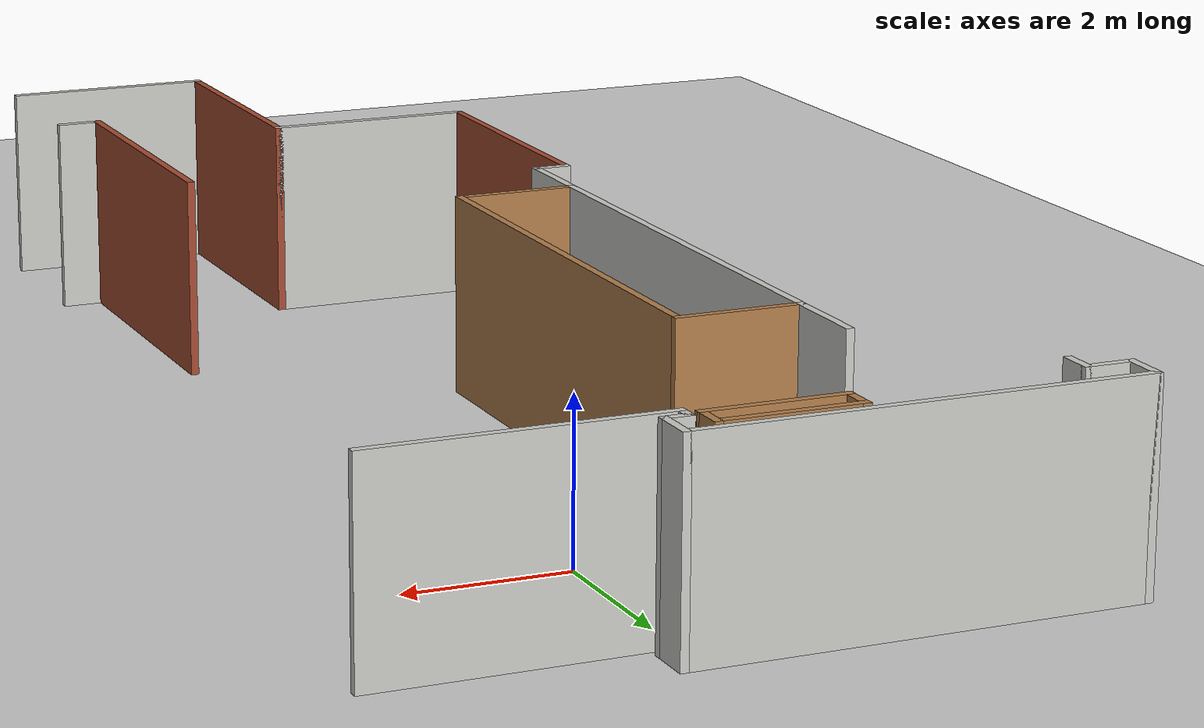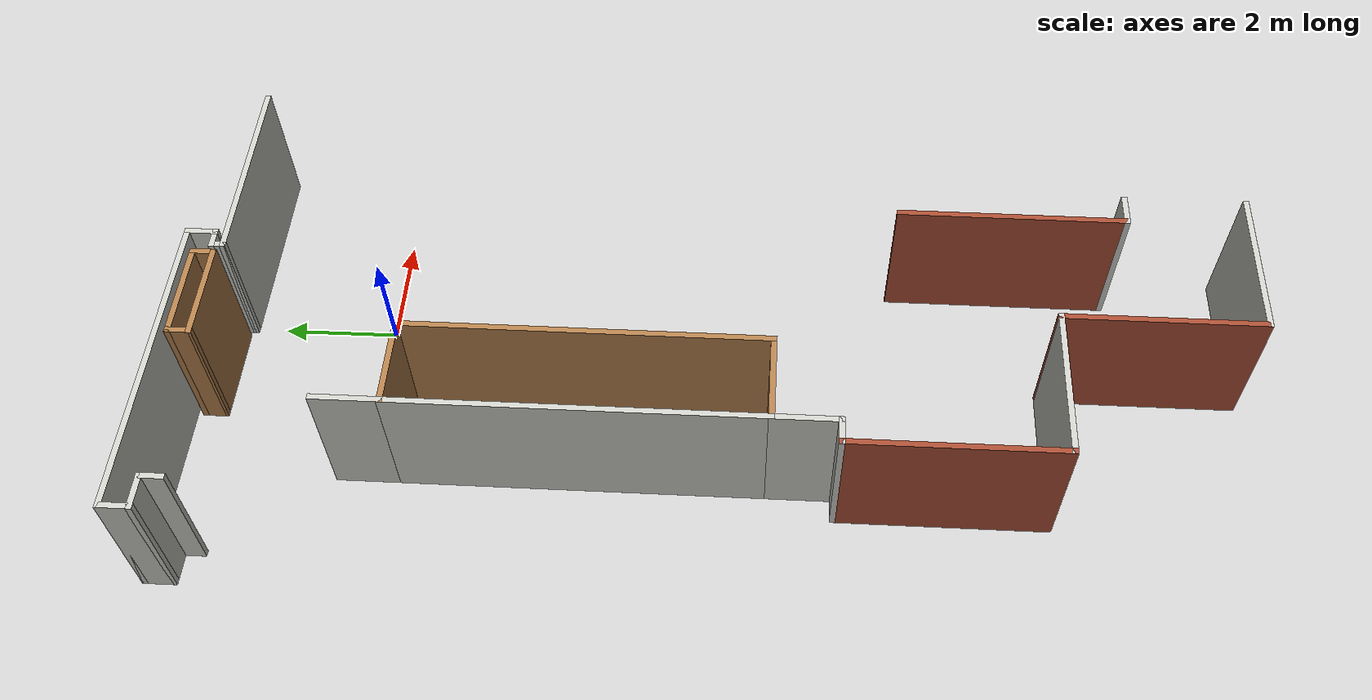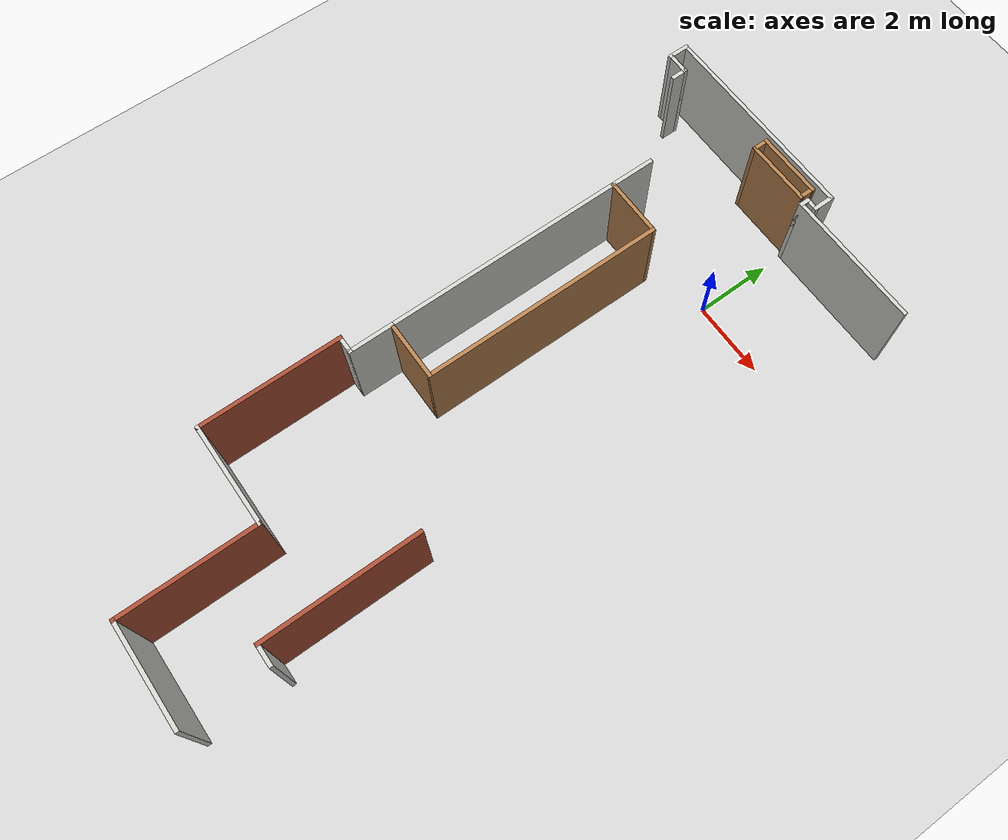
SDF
<sdf version="1.7">
 <world name="default">
  <model name="ground_plane">
   <static>1</static>
   <link name="link">
    <collision name="collision">
     <geometry><plane><normal>0 0 1</normal><size>100 100</size></plane></geometry>
     <surface><friction><ode><mu>100</mu><mu2>50</mu2></ode></friction></surface>
    </collision>
    <visual name="visual">
     <cast_shadows>0</cast_shadows>
     <geometry><plane><normal>0 0 1</normal><size>100 100</size></plane></geometry>
     <material>
      <script><uri>file://media/materials/scripts/gazebo.material</uri><name>Gazebo/Grey</name></script>
     </material>
    </visual>
   </link>
  </model>
  <model name="miraikan_5F_gate_and_elevator">
   <link name="Wall_167">
    <pose>-1.45 5.155 0 0 -0 1.5708</pose>
    <visual name="Wall_167_Visual">
     <pose>0 0 1.25 0 -0 0</pose>
     <geometry><box><size>0.45 0.1 2.5</size></box></geometry>
     <material>
      <script><uri>file://media/materials/scripts/gazebo.material</uri><name>Gazebo/CeilingTiled</name></script>
      <ambient>1 1 1 1</ambient>
      <shader type="pixel"/>
     </material>
     <meta><layer>0</layer></meta>
    </visual>
    <collision name="Wall_167_Collision">
     <pose>0 0 1.25 0 -0 0</pose>
     <geometry><box><size>0.45 0.1 2.5</size></box></geometry>
     <surface>
      <friction>
       <ode><mu>1</mu><mu2>1</mu2><fdir1>0 0 0</fdir1><slip1>0</slip1><slip2>0</slip2></ode>
       <torsional>
        <coefficient>1</coefficient>
        <patch_radius>0</patch_radius>
        <surface_radius>0</surface_radius>
        <use_patch_radius>1</use_patch_radius>
        <ode><slip>0</slip></ode>
       </torsional>
      </friction>
      <bounce><restitution_coefficient>0</restitution_coefficient><threshold>1e+06</threshold></bounce>
      <contact>
       <collide_without_contact>0</collide_without_contact>
       <collide_without_contact_bitmask>1</collide_without_contact_bitmask>
       <collide_bitmask>1</collide_bitmask>
       <ode>
        <soft_cfm>0</soft_cfm>
        <soft_erp>0.2</soft_erp>
        <kp>1e+13</kp>
        <kd>1</kd>
        <max_vel>0.01</max_vel>
        <min_depth>0</min_depth>
       </ode>
       <bullet>
        <split_impulse>1</split_impulse>
        <split_impulse_penetration_threshold>-0.01</split_impulse_penetration_threshold>
        <soft_cfm>0</soft_cfm>
        <soft_erp>0.2</soft_erp>
        <kp>1e+13</kp>
        <kd>1</kd>
       </bullet>
      </contact>
     </surface>
    </collision>
   </link>
   <link name="Wall_169">
    <pose>-1.72 5.33 0 0 -0 3.14159</pose>
    <visual name="Wall_169_Visual">
     <pose>0 0 1.25 0 -0 0</pose>
     <geometry><box><size>0.64 0.1 2.5</size></box></geometry>
     <material>
      <script><uri>file://media/materials/scripts/gazebo.material</uri><name>Gazebo/CeilingTiled</name></script>
      <ambient>1 1 1 1</ambient>
      <shader type="pixel"/>
     </material>
     <meta><layer>0</layer></meta>
    </visual>
    <collision name="Wall_169_Collision">
     <pose>0 0 1.25 0 -0 0</pose>
     <geometry><box><size>0.64 0.1 2.5</size></box></geometry>
     <surface>
      <friction>
       <ode><mu>1</mu><mu2>1</mu2><fdir1>0 0 0</fdir1><slip1>0</slip1><slip2>0</slip2></ode>
       <torsional>
        <coefficient>1</coefficient>
        <patch_radius>0</patch_radius>
        <surface_radius>0</surface_radius>
        <use_patch_radius>1</use_patch_radius>
        <ode><slip>0</slip></ode>
       </torsional>
      </friction>
      <bounce><restitution_coefficient>0</restitution_coefficient><threshold>1e+06</threshold></bounce>
      <contact>
       <collide_without_contact>0</collide_without_contact>
       <collide_without_contact_bitmask>1</collide_without_contact_bitmask>
       <collide_bitmask>1</collide_bitmask>
       <ode>
        <soft_cfm>0</soft_cfm>
        <soft_erp>0.2</soft_erp>
        <kp>1e+13</kp>
        <kd>1</kd>
        <max_vel>0.01</max_vel>
        <min_depth>0</min_depth>
       </ode>
       <bullet>
        <split_impulse>1</split_impulse>
        <split_impulse_penetration_threshold>-0.01</split_impulse_penetration_threshold>
        <soft_cfm>0</soft_cfm>
        <soft_erp>0.2</soft_erp>
        <kp>1e+13</kp>
        <kd>1</kd>
       </bullet>
      </contact>
     </surface>
    </collision>
   </link>
   <link name="Wall_171">
    <pose>-1.99 5.57 0 0 -0 1.5708</pose>
    <visual name="Wall_171_Visual">
     <pose>0 0 1.25 0 -0 0</pose>
     <geometry><box><size>0.58 0.1 2.5</size></box></geometry>
     <material>
      <script><uri>file://media/materials/scripts/gazebo.material</uri><name>Gazebo/CeilingTiled</name></script>
      <ambient>1 1 1 1</ambient>
      <shader type="pixel"/>
     </material>
     <meta><layer>0</layer></meta>
    </visual>
    <collision name="Wall_171_Collision">
     <pose>0 0 1.25 0 -0 0</pose>
     <geometry><box><size>0.58 0.1 2.5</size></box></geometry>
     <surface>
      <friction>
       <ode><mu>1</mu><mu2>1</mu2><fdir1>0 0 0</fdir1><slip1>0</slip1><slip2>0</slip2></ode>
       <torsional>
        <coefficient>1</coefficient>
        <patch_radius>0</patch_radius>
        <surface_radius>0</surface_radius>
        <use_patch_radius>1</use_patch_radius>
        <ode><slip>0</slip></ode>
       </torsional>
      </friction>
      <bounce><restitution_coefficient>0</restitution_coefficient><threshold>1e+06</threshold></bounce>
      <contact>
       <collide_without_contact>0</collide_without_contact>
       <collide_without_contact_bitmask>1</collide_without_contact_bitmask>
       <collide_bitmask>1</collide_bitmask>
       <ode>
        <soft_cfm>0</soft_cfm>
        <soft_erp>0.2</soft_erp>
        <kp>1e+13</kp>
        <kd>1</kd>
        <max_vel>0.01</max_vel>
        <min_depth>0</min_depth>
       </ode>
       <bullet>
        <split_impulse>1</split_impulse>
        <split_impulse_penetration_threshold>-0.01</split_impulse_penetration_threshold>
        <soft_cfm>0</soft_cfm>
        <soft_erp>0.2</soft_erp>
        <kp>1e+13</kp>
        <kd>1</kd>
       </bullet>
      </contact>
     </surface>
    </collision>
   </link>
   <link name="Wall_174">
    <pose>0.695 5.81 0 0 -0 0</pose>
    <visual name="Wall_174_Visual">
     <pose>0 0 1.25 0 -0 0</pose>
     <geometry><box><size>5.47 0.1 2.5</size></box></geometry>
     <material>
      <script><uri>file://media/materials/scripts/gazebo.material</uri><name>Gazebo/CeilingTiled</name></script>
      <ambient>1 1 1 1</ambient>
      <shader type="pixel"/>
     </material>
     <meta><layer>0</layer></meta>
    </visual>
    <collision name="Wall_174_Collision">
     <pose>0 0 1.25 0 -0 0</pose>
     <geometry><box><size>5.47 0.1 2.5</size></box></geometry>
     <surface>
      <friction>
       <ode><mu>1</mu><mu2>1</mu2><fdir1>0 0 0</fdir1><slip1>0</slip1><slip2>0</slip2></ode>
       <torsional>
        <coefficient>1</coefficient>
        <patch_radius>0</patch_radius>
        <surface_radius>0</surface_radius>
        <use_patch_radius>1</use_patch_radius>
        <ode><slip>0</slip></ode>
       </torsional>
      </friction>
      <bounce><restitution_coefficient>0</restitution_coefficient><threshold>1e+06</threshold></bounce>
      <contact>
       <collide_without_contact>0</collide_without_contact>
       <collide_without_contact_bitmask>1</collide_without_contact_bitmask>
       <collide_bitmask>1</collide_bitmask>
       <ode>
        <soft_cfm>0</soft_cfm>
        <soft_erp>0.2</soft_erp>
        <kp>1e+13</kp>
        <kd>1</kd>
        <max_vel>0.01</max_vel>
        <min_depth>0</min_depth>
       </ode>
       <bullet>
        <split_impulse>1</split_impulse>
        <split_impulse_penetration_threshold>-0.01</split_impulse_penetration_threshold>
        <soft_cfm>0</soft_cfm>
        <soft_erp>0.2</soft_erp>
        <kp>1e+13</kp>
        <kd>1</kd>
       </bullet>
      </contact>
     </surface>
    </collision>
   </link>
   <link name="Wall_176">
    <pose>3.38 5.57 0 0 0 -1.5708</pose>
    <visual name="Wall_176_Visual">
     <pose>0 0 1.25 0 -0 0</pose>
     <geometry><box><size>0.58 0.1 2.5</size></box></geometry>
     <material>
      <script><uri>file://media/materials/scripts/gazebo.material</uri><name>Gazebo/CeilingTiled</name></script>
      <ambient>1 1 1 1</ambient>
      <shader type="pixel"/>
     </material>
     <meta><layer>0</layer></meta>
    </visual>
    <collision name="Wall_176_Collision">
     <pose>0 0 1.25 0 -0 0</pose>
     <geometry><box><size>0.58 0.1 2.5</size></box></geometry>
     <surface>
      <friction>
       <ode><mu>1</mu><mu2>1</mu2><fdir1>0 0 0</fdir1><slip1>0</slip1><slip2>0</slip2></ode>
       <torsional>
        <coefficient>1</coefficient>
        <patch_radius>0</patch_radius>
        <surface_radius>0</surface_radius>
        <use_patch_radius>1</use_patch_radius>
        <ode><slip>0</slip></ode>
       </torsional>
      </friction>
      <bounce><restitution_coefficient>0</restitution_coefficient><threshold>1e+06</threshold></bounce>
      <contact>
       <collide_without_contact>0</collide_without_contact>
       <collide_without_contact_bitmask>1</collide_without_contact_bitmask>
       <collide_bitmask>1</collide_bitmask>
       <ode>
        <soft_cfm>0</soft_cfm>
        <soft_erp>0.2</soft_erp>
        <kp>1e+13</kp>
        <kd>1</kd>
        <max_vel>0.01</max_vel>
        <min_depth>0</min_depth>
       </ode>
       <bullet>
        <split_impulse>1</split_impulse>
        <split_impulse_penetration_threshold>-0.01</split_impulse_penetration_threshold>
        <soft_cfm>0</soft_cfm>
        <soft_erp>0.2</soft_erp>
        <kp>1e+13</kp>
        <kd>1</kd>
       </bullet>
      </contact>
     </surface>
    </collision>
   </link>
   <link name="Wall_178">
    <pose>3.245 5.33 0 0 -0 3.14159</pose>
    <visual name="Wall_178_Visual">
     <pose>0 0 1.25 0 -0 0</pose>
     <geometry><box><size>0.37 0.1 2.5</size></box></geometry>
     <material>
      <script><uri>file://media/materials/scripts/gazebo.material</uri><name>Gazebo/CeilingTiled</name></script>
      <ambient>1 1 1 1</ambient>
      <shader type="pixel"/>
     </material>
     <meta><layer>0</layer></meta>
    </visual>
    <collision name="Wall_178_Collision">
     <pose>0 0 1.25 0 -0 0</pose>
     <geometry><box><size>0.37 0.1 2.5</size></box></geometry>
     <surface>
      <friction>
       <ode><mu>1</mu><mu2>1</mu2><fdir1>0 0 0</fdir1><slip1>0</slip1><slip2>0</slip2></ode>
       <torsional>
        <coefficient>1</coefficient>
        <patch_radius>0</patch_radius>
        <surface_radius>0</surface_radius>
        <use_patch_radius>1</use_patch_radius>
        <ode><slip>0</slip></ode>
       </torsional>
      </friction>
      <bounce><restitution_coefficient>0</restitution_coefficient><threshold>1e+06</threshold></bounce>
      <contact>
       <collide_without_contact>0</collide_without_contact>
       <collide_without_contact_bitmask>1</collide_without_contact_bitmask>
       <collide_bitmask>1</collide_bitmask>
       <ode>
        <soft_cfm>0</soft_cfm>
        <soft_erp>0.2</soft_erp>
        <kp>1e+13</kp>
        <kd>1</kd>
        <max_vel>0.01</max_vel>
        <min_depth>0</min_depth>
       </ode>
       <bullet>
        <split_impulse>1</split_impulse>
        <split_impulse_penetration_threshold>-0.01</split_impulse_penetration_threshold>
        <soft_cfm>0</soft_cfm>
        <soft_erp>0.2</soft_erp>
        <kp>1e+13</kp>
        <kd>1</kd>
       </bullet>
      </contact>
     </surface>
    </collision>
   </link>
   <link name="Wall_181">
    <pose>3.11 5.235 0 0 0 -1.5708</pose>
    <visual name="Wall_181_Visual">
     <pose>0 0 1.25 0 -0 0</pose>
     <geometry><box><size>0.29 0.1 2.5</size></box></geometry>
     <material>
      <script><uri>file://media/materials/scripts/gazebo.material</uri><name>Gazebo/CeilingTiled</name></script>
      <ambient>1 1 1 1</ambient>
      <shader type="pixel"/>
     </material>
     <meta><layer>0</layer></meta>
    </visual>
    <collision name="Wall_181_Collision">
     <pose>0 0 1.25 0 -0 0</pose>
     <geometry><box><size>0.29 0.1 2.5</size></box></geometry>
     <surface>
      <friction>
       <ode><mu>1</mu><mu2>1</mu2><fdir1>0 0 0</fdir1><slip1>0</slip1><slip2>0</slip2></ode>
       <torsional>
        <coefficient>1</coefficient>
        <patch_radius>0</patch_radius>
        <surface_radius>0</surface_radius>
        <use_patch_radius>1</use_patch_radius>
        <ode><slip>0</slip></ode>
       </torsional>
      </friction>
      <bounce><restitution_coefficient>0</restitution_coefficient><threshold>1e+06</threshold></bounce>
      <contact>
       <collide_without_contact>0</collide_without_contact>
       <collide_without_contact_bitmask>1</collide_without_contact_bitmask>
       <collide_bitmask>1</collide_bitmask>
       <ode>
        <soft_cfm>0</soft_cfm>
        <soft_erp>0.2</soft_erp>
        <kp>1e+13</kp>
        <kd>1</kd>
        <max_vel>0.01</max_vel>
        <min_depth>0</min_depth>
       </ode>
       <bullet>
        <split_impulse>1</split_impulse>
        <split_impulse_penetration_threshold>-0.01</split_impulse_penetration_threshold>
        <soft_cfm>0</soft_cfm>
        <soft_erp>0.2</soft_erp>
        <kp>1e+13</kp>
        <kd>1</kd>
       </bullet>
      </contact>
     </surface>
    </collision>
   </link>
   <link name="Wall_185">
    <pose>4.84 5.14 0 0 -0 0</pose>
    <visual name="Wall_185_Visual">
     <pose>0 0 1.25 0 -0 0</pose>
     <geometry><box><size>3.56 0.1 2.5</size></box></geometry>
     <material>
      <script><uri>file://media/materials/scripts/gazebo.material</uri><name>Gazebo/CeilingTiled</name></script>
      <ambient>1 1 1 1</ambient>
      <shader type="pixel"/>
     </material>
     <meta><layer>0</layer></meta>
    </visual>
    <collision name="Wall_185_Collision">
     <pose>0 0 1.25 0 -0 0</pose>
     <geometry><box><size>3.56 0.1 2.5</size></box></geometry>
     <surface>
      <friction>
       <ode><mu>1</mu><mu2>1</mu2><fdir1>0 0 0</fdir1><slip1>0</slip1><slip2>0</slip2></ode>
       <torsional>
        <coefficient>1</coefficient>
        <patch_radius>0</patch_radius>
        <surface_radius>0</surface_radius>
        <use_patch_radius>1</use_patch_radius>
        <ode><slip>0</slip></ode>
       </torsional>
      </friction>
      <bounce><restitution_coefficient>0</restitution_coefficient><threshold>1e+06</threshold></bounce>
      <contact>
       <collide_without_contact>0</collide_without_contact>
       <collide_without_contact_bitmask>1</collide_without_contact_bitmask>
       <collide_bitmask>1</collide_bitmask>
       <ode>
        <soft_cfm>0</soft_cfm>
        <soft_erp>0.2</soft_erp>
        <kp>1e+13</kp>
        <kd>1</kd>
        <max_vel>0.01</max_vel>
        <min_depth>0</min_depth>
       </ode>
       <bullet>
        <split_impulse>1</split_impulse>
        <split_impulse_penetration_threshold>-0.01</split_impulse_penetration_threshold>
        <soft_cfm>0</soft_cfm>
        <soft_erp>0.2</soft_erp>
        <kp>1e+13</kp>
        <kd>1</kd>
       </bullet>
      </contact>
     </surface>
    </collision>
   </link>
   <link name="Wall_201">
    <pose>0.11 2.47 0 0 0 -1.5708</pose>
    <visual name="Wall_201_Visual">
     <pose>0 0 1.25 0 -0 0</pose>
     <geometry><box><size>1.2 0.1 2.5</size></box></geometry>
     <material>
      <script><uri>file://media/materials/scripts/gazebo.material</uri><name>Gazebo/CeilingTiled</name></script>
      <ambient>1 1 1 1</ambient>
      <shader type="pixel"/>
     </material>
     <meta><layer>0</layer></meta>
    </visual>
    <collision name="Wall_201_Collision">
     <pose>0 0 1.25 0 -0 0</pose>
     <geometry><box><size>1.2 0.1 2.5</size></box></geometry>
     <surface>
      <friction>
       <ode><mu>1</mu><mu2>1</mu2><fdir1>0 0 0</fdir1><slip1>0</slip1><slip2>0</slip2></ode>
       <torsional>
        <coefficient>1</coefficient>
        <patch_radius>0</patch_radius>
        <surface_radius>0</surface_radius>
        <use_patch_radius>1</use_patch_radius>
        <ode><slip>0</slip></ode>
       </torsional>
      </friction>
      <bounce><restitution_coefficient>0</restitution_coefficient><threshold>1e+06</threshold></bounce>
      <contact>
       <collide_without_contact>0</collide_without_contact>
       <collide_without_contact_bitmask>1</collide_without_contact_bitmask>
       <collide_bitmask>1</collide_bitmask>
       <ode>
        <soft_cfm>0</soft_cfm>
        <soft_erp>0.2</soft_erp>
        <kp>1e+13</kp>
        <kd>1</kd>
        <max_vel>0.01</max_vel>
        <min_depth>0</min_depth>
       </ode>
       <bullet>
        <split_impulse>1</split_impulse>
        <split_impulse_penetration_threshold>-0.01</split_impulse_penetration_threshold>
        <soft_cfm>0</soft_cfm>
        <soft_erp>0.2</soft_erp>
        <kp>1e+13</kp>
        <kd>1</kd>
       </bullet>
      </contact>
     </surface>
    </collision>
   </link>
   <link name="Wall_203">
    <pose>0.86 1.92 0 0 -0 0</pose>
    <visual name="Wall_203_Visual">
     <pose>0 0 1.25 0 -0 0</pose>
     <geometry><box><size>1.6 0.1 2.5</size></box></geometry>
     <material>
      <script><uri>file://media/materials/scripts/gazebo.material</uri><name>Gazebo/Wood</name></script>
      <ambient>1 1 1 1</ambient>
      <shader type="pixel"/>
     </material>
     <meta><layer>0</layer></meta>
    </visual>
    <collision name="Wall_203_Collision">
     <pose>0 0 1.25 0 -0 0</pose>
     <geometry><box><size>1.6 0.1 2.5</size></box></geometry>
     <surface>
      <friction>
       <ode><mu>1</mu><mu2>1</mu2><fdir1>0 0 0</fdir1><slip1>0</slip1><slip2>0</slip2></ode>
       <torsional>
        <coefficient>1</coefficient>
        <patch_radius>0</patch_radius>
        <surface_radius>0</surface_radius>
        <use_patch_radius>1</use_patch_radius>
        <ode><slip>0</slip></ode>
       </torsional>
      </friction>
      <bounce><restitution_coefficient>0</restitution_coefficient><threshold>1e+06</threshold></bounce>
      <contact>
       <collide_without_contact>0</collide_without_contact>
       <collide_without_contact_bitmask>1</collide_without_contact_bitmask>
       <collide_bitmask>1</collide_bitmask>
       <ode>
        <soft_cfm>0</soft_cfm>
        <soft_erp>0.2</soft_erp>
        <kp>1e+13</kp>
        <kd>1</kd>
        <max_vel>0.01</max_vel>
        <min_depth>0</min_depth>
       </ode>
       <bullet>
        <split_impulse>1</split_impulse>
        <split_impulse_penetration_threshold>-0.01</split_impulse_penetration_threshold>
        <soft_cfm>0</soft_cfm>
        <soft_erp>0.2</soft_erp>
        <kp>1e+13</kp>
        <kd>1</kd>
       </bullet>
      </contact>
     </surface>
    </collision>
   </link>
   <link name="Wall_211">
    <pose>0.11 -4.83 0 0 -0 1.5708</pose>
    <visual name="Wall_211_Visual">
     <pose>0 0 1.25 0 -0 0</pose>
     <geometry><box><size>1.2 0.1 2.5</size></box></geometry>
     <material>
      <script><uri>file://media/materials/scripts/gazebo.material</uri><name>Gazebo/CeilingTiled</name></script>
      <ambient>1 1 1 1</ambient>
      <shader type="pixel"/>
     </material>
     <meta><layer>0</layer></meta>
    </visual>
    <collision name="Wall_211_Collision">
     <pose>0 0 1.25 0 -0 0</pose>
     <geometry><box><size>1.2 0.1 2.5</size></box></geometry>
     <surface>
      <friction>
       <ode><mu>1</mu><mu2>1</mu2><fdir1>0 0 0</fdir1><slip1>0</slip1><slip2>0</slip2></ode>
       <torsional>
        <coefficient>1</coefficient>
        <patch_radius>0</patch_radius>
        <surface_radius>0</surface_radius>
        <use_patch_radius>1</use_patch_radius>
        <ode><slip>0</slip></ode>
       </torsional>
      </friction>
      <bounce><restitution_coefficient>0</restitution_coefficient><threshold>1e+06</threshold></bounce>
      <contact>
       <collide_without_contact>0</collide_without_contact>
       <collide_without_contact_bitmask>1</collide_without_contact_bitmask>
       <collide_bitmask>1</collide_bitmask>
       <ode>
        <soft_cfm>0</soft_cfm>
        <soft_erp>0.2</soft_erp>
        <kp>1e+13</kp>
        <kd>1</kd>
        <max_vel>0.01</max_vel>
        <min_depth>0</min_depth>
       </ode>
       <bullet>
        <split_impulse>1</split_impulse>
        <split_impulse_penetration_threshold>-0.01</split_impulse_penetration_threshold>
        <soft_cfm>0</soft_cfm>
        <soft_erp>0.2</soft_erp>
        <kp>1e+13</kp>
        <kd>1</kd>
       </bullet>
      </contact>
     </surface>
    </collision>
   </link>
   <link name="Wall_213">
    <pose>0.86 -4.28 0 0 -0 0</pose>
    <visual name="Wall_213_Visual">
     <pose>0 0 1.25 0 -0 0</pose>
     <geometry><box><size>1.6 0.1 2.5</size></box></geometry>
     <material>
      <script><uri>file://media/materials/scripts/gazebo.material</uri><name>Gazebo/Wood</name></script>
      <ambient>1 1 1 1</ambient>
      <shader type="pixel"/>
     </material>
     <meta><layer>0</layer></meta>
    </visual>
    <collision name="Wall_213_Collision">
     <pose>0 0 1.25 0 -0 0</pose>
     <geometry><box><size>1.6 0.1 2.5</size></box></geometry>
     <surface>
      <friction>
       <ode><mu>1</mu><mu2>1</mu2><fdir1>0 0 0</fdir1><slip1>0</slip1><slip2>0</slip2></ode>
       <torsional>
        <coefficient>1</coefficient>
        <patch_radius>0</patch_radius>
        <surface_radius>0</surface_radius>
        <use_patch_radius>1</use_patch_radius>
        <ode><slip>0</slip></ode>
       </torsional>
      </friction>
      <bounce><restitution_coefficient>0</restitution_coefficient><threshold>1e+06</threshold></bounce>
      <contact>
       <collide_without_contact>0</collide_without_contact>
       <collide_without_contact_bitmask>1</collide_without_contact_bitmask>
       <collide_bitmask>1</collide_bitmask>
       <ode>
        <soft_cfm>0</soft_cfm>
        <soft_erp>0.2</soft_erp>
        <kp>1e+13</kp>
        <kd>1</kd>
        <max_vel>0.01</max_vel>
        <min_depth>0</min_depth>
       </ode>
       <bullet>
        <split_impulse>1</split_impulse>
        <split_impulse_penetration_threshold>-0.01</split_impulse_penetration_threshold>
        <soft_cfm>0</soft_cfm>
        <soft_erp>0.2</soft_erp>
        <kp>1e+13</kp>
        <kd>1</kd>
       </bullet>
      </contact>
     </surface>
    </collision>
   </link>
   <link name="Wall_215">
    <pose>1.61 -1.18 0 0 -0 1.5708</pose>
    <visual name="Wall_215_Visual">
     <pose>0 0 1.25 0 -0 0</pose>
     <geometry><box><size>6.3 0.1 2.5</size></box></geometry>
     <material>
      <script><uri>file://media/materials/scripts/gazebo.material</uri><name>Gazebo/Wood</name></script>
      <ambient>1 1 1 1</ambient>
      <shader type="pixel"/>
     </material>
     <meta><layer>0</layer></meta>
    </visual>
    <collision name="Wall_215_Collision">
     <pose>0 0 1.25 0 -0 0</pose>
     <geometry><box><size>6.3 0.1 2.5</size></box></geometry>
     <surface>
      <friction>
       <ode><mu>1</mu><mu2>1</mu2><fdir1>0 0 0</fdir1><slip1>0</slip1><slip2>0</slip2></ode>
       <torsional>
        <coefficient>1</coefficient>
        <patch_radius>0</patch_radius>
        <surface_radius>0</surface_radius>
        <use_patch_radius>1</use_patch_radius>
        <ode><slip>0</slip></ode>
       </torsional>
      </friction>
      <bounce><restitution_coefficient>0</restitution_coefficient><threshold>1e+06</threshold></bounce>
      <contact>
       <collide_without_contact>0</collide_without_contact>
       <collide_without_contact_bitmask>1</collide_without_contact_bitmask>
       <collide_bitmask>1</collide_bitmask>
       <ode>
        <soft_cfm>0</soft_cfm>
        <soft_erp>0.2</soft_erp>
        <kp>1e+13</kp>
        <kd>1</kd>
        <max_vel>0.01</max_vel>
        <min_depth>0</min_depth>
       </ode>
       <bullet>
        <split_impulse>1</split_impulse>
        <split_impulse_penetration_threshold>-0.01</split_impulse_penetration_threshold>
        <soft_cfm>0</soft_cfm>
        <soft_erp>0.2</soft_erp>
        <kp>1e+13</kp>
        <kd>1</kd>
       </bullet>
      </contact>
     </surface>
    </collision>
   </link>
   <link name="Wall_217">
    <pose>0.11 -1.18 0 0 -0 1.5708</pose>
    <visual name="Wall_217_Visual">
     <pose>0 0 1.25 0 -0 0</pose>
     <geometry><box><size>6.3 0.1 2.5</size></box></geometry>
     <material>
      <script><uri>file://media/materials/scripts/gazebo.material</uri><name>Gazebo/CeilingTiled</name></script>
      <ambient>1 1 1 1</ambient>
      <shader type="pixel"/>
     </material>
     <meta><layer>0</layer></meta>
    </visual>
    <collision name="Wall_217_Collision">
     <pose>0 0 1.25 0 -0 0</pose>
     <geometry><box><size>6.3 0.1 2.5</size></box></geometry>
     <surface>
      <friction>
       <ode><mu>1</mu><mu2>1</mu2><fdir1>0 0 0</fdir1><slip1>0</slip1><slip2>0</slip2></ode>
       <torsional>
        <coefficient>1</coefficient>
        <patch_radius>0</patch_radius>
        <surface_radius>0</surface_radius>
        <use_patch_radius>1</use_patch_radius>
        <ode><slip>0</slip></ode>
       </torsional>
      </friction>
      <bounce><restitution_coefficient>0</restitution_coefficient><threshold>1e+06</threshold></bounce>
      <contact>
       <collide_without_contact>0</collide_without_contact>
       <collide_without_contact_bitmask>1</collide_without_contact_bitmask>
       <collide_bitmask>1</collide_bitmask>
       <ode>
        <soft_cfm>0</soft_cfm>
        <soft_erp>0.2</soft_erp>
        <kp>1e+13</kp>
        <kd>1</kd>
        <max_vel>0.01</max_vel>
        <min_depth>0</min_depth>
       </ode>
       <bullet>
        <split_impulse>1</split_impulse>
        <split_impulse_penetration_threshold>-0.01</split_impulse_penetration_threshold>
        <soft_cfm>0</soft_cfm>
        <soft_erp>0.2</soft_erp>
        <kp>1e+13</kp>
        <kd>1</kd>
       </bullet>
      </contact>
     </surface>
    </collision>
   </link>
   <link name="Wall_221">
    <pose>-0.09 -5.38 0 0 -0 3.14159</pose>
    <visual name="Wall_221_Visual">
     <pose>0 0 1.25 0 -0 0</pose>
     <geometry><box><size>0.5 0.1 2.5</size></box></geometry>
     <material>
      <script><uri>file://media/materials/scripts/gazebo.material</uri><name>Gazebo/CeilingTiled</name></script>
      <ambient>1 1 1 1</ambient>
      <shader type="pixel"/>
     </material>
     <meta><layer>0</layer></meta>
    </visual>
    <collision name="Wall_221_Collision">
     <pose>0 0 1.25 0 -0 0</pose>
     <geometry><box><size>0.5 0.1 2.5</size></box></geometry>
     <surface>
      <friction>
       <ode><mu>1</mu><mu2>1</mu2><fdir1>0 0 0</fdir1><slip1>0</slip1><slip2>0</slip2></ode>
       <torsional>
        <coefficient>1</coefficient>
        <patch_radius>0</patch_radius>
        <surface_radius>0</surface_radius>
        <use_patch_radius>1</use_patch_radius>
        <ode><slip>0</slip></ode>
       </torsional>
      </friction>
      <bounce><restitution_coefficient>0</restitution_coefficient><threshold>1e+06</threshold></bounce>
      <contact>
       <collide_without_contact>0</collide_without_contact>
       <collide_without_contact_bitmask>1</collide_without_contact_bitmask>
       <collide_bitmask>1</collide_bitmask>
       <ode>
        <soft_cfm>0</soft_cfm>
        <soft_erp>0.2</soft_erp>
        <kp>1e+13</kp>
        <kd>1</kd>
        <max_vel>0.01</max_vel>
        <min_depth>0</min_depth>
       </ode>
       <bullet>
        <split_impulse>1</split_impulse>
        <split_impulse_penetration_threshold>-0.01</split_impulse_penetration_threshold>
        <soft_cfm>0</soft_cfm>
        <soft_erp>0.2</soft_erp>
        <kp>1e+13</kp>
        <kd>1</kd>
       </bullet>
      </contact>
     </surface>
    </collision>
   </link>
   <link name="Wall_223">
    <pose>-0.29 -7.18 0 0 0 -1.5708</pose>
    <visual name="Wall_223_Visual">
     <pose>0 0 1.25 0 -0 0</pose>
     <geometry><box><size>3.7 0.1 2.5</size></box></geometry>
     <material>
      <script><uri>file://media/materials/scripts/gazebo.material</uri><name>Gazebo/Bricks</name></script>
      <ambient>1 1 1 1</ambient>
      <shader type="pixel"/>
     </material>
     <meta><layer>0</layer></meta>
    </visual>
    <collision name="Wall_223_Collision">
     <pose>0 0 1.25 0 -0 0</pose>
     <geometry><box><size>3.7 0.1 2.5</size></box></geometry>
     <surface>
      <friction>
       <ode><mu>1</mu><mu2>1</mu2><fdir1>0 0 0</fdir1><slip1>0</slip1><slip2>0</slip2></ode>
       <torsional>
        <coefficient>1</coefficient>
        <patch_radius>0</patch_radius>
        <surface_radius>0</surface_radius>
        <use_patch_radius>1</use_patch_radius>
        <ode><slip>0</slip></ode>
       </torsional>
      </friction>
      <bounce><restitution_coefficient>0</restitution_coefficient><threshold>1e+06</threshold></bounce>
      <contact>
       <collide_without_contact>0</collide_without_contact>
       <collide_without_contact_bitmask>1</collide_without_contact_bitmask>
       <collide_bitmask>1</collide_bitmask>
       <ode>
        <soft_cfm>0</soft_cfm>
        <soft_erp>0.2</soft_erp>
        <kp>1e+13</kp>
        <kd>1</kd>
        <max_vel>0.01</max_vel>
        <min_depth>0</min_depth>
       </ode>
       <bullet>
        <split_impulse>1</split_impulse>
        <split_impulse_penetration_threshold>-0.01</split_impulse_penetration_threshold>
        <soft_cfm>0</soft_cfm>
        <soft_erp>0.2</soft_erp>
        <kp>1e+13</kp>
        <kd>1</kd>
       </bullet>
      </contact>
     </surface>
    </collision>
   </link>
   <link name="Wall_229">
    <pose>1.01 -8.98 0 0 -0 0</pose>
    <visual name="Wall_229_Visual">
     <pose>0 0 1.25 0 -0 0</pose>
     <geometry><box><size>2.7 0.1 2.5</size></box></geometry>
     <material>
      <script><uri>file://media/materials/scripts/gazebo.material</uri><name>Gazebo/CeilingTiled</name></script>
      <ambient>1 1 1 1</ambient>
      <shader type="pixel"/>
     </material>
     <meta><layer>0</layer></meta>
    </visual>
    <collision name="Wall_229_Collision">
     <pose>0 0 1.25 0 -0 0</pose>
     <geometry><box><size>2.7 0.1 2.5</size></box></geometry>
     <surface>
      <friction>
       <ode><mu>1</mu><mu2>1</mu2><fdir1>0 0 0</fdir1><slip1>0</slip1><slip2>0</slip2></ode>
       <torsional>
        <coefficient>1</coefficient>
        <patch_radius>0</patch_radius>
        <surface_radius>0</surface_radius>
        <use_patch_radius>1</use_patch_radius>
        <ode><slip>0</slip></ode>
       </torsional>
      </friction>
      <bounce><restitution_coefficient>0</restitution_coefficient><threshold>1e+06</threshold></bounce>
      <contact>
       <collide_without_contact>0</collide_without_contact>
       <collide_without_contact_bitmask>1</collide_without_contact_bitmask>
       <collide_bitmask>1</collide_bitmask>
       <ode>
        <soft_cfm>0</soft_cfm>
        <soft_erp>0.2</soft_erp>
        <kp>1e+13</kp>
        <kd>1</kd>
        <max_vel>0.01</max_vel>
        <min_depth>0</min_depth>
       </ode>
       <bullet>
        <split_impulse>1</split_impulse>
        <split_impulse_penetration_threshold>-0.01</split_impulse_penetration_threshold>
        <soft_cfm>0</soft_cfm>
        <soft_erp>0.2</soft_erp>
        <kp>1e+13</kp>
        <kd>1</kd>
       </bullet>
      </contact>
     </surface>
    </collision>
   </link>
   <link name="Wall_231">
    <pose>2.31 -10.68 0 0 0 -1.5708</pose>
    <visual name="Wall_231_Visual">
     <pose>0 0 1.25 0 -0 0</pose>
     <geometry><box><size>3.5 0.1 2.5</size></box></geometry>
     <material>
      <script><uri>file://media/materials/scripts/gazebo.material</uri><name>Gazebo/Bricks</name></script>
      <ambient>1 1 1 1</ambient>
      <shader type="pixel"/>
     </material>
     <meta><layer>0</layer></meta>
    </visual>
    <collision name="Wall_231_Collision">
     <pose>0 0 1.25 0 -0 0</pose>
     <geometry><box><size>3.5 0.1 2.5</size></box></geometry>
     <surface>
      <friction>
       <ode><mu>1</mu><mu2>1</mu2><fdir1>0 0 0</fdir1><slip1>0</slip1><slip2>0</slip2></ode>
       <torsional>
        <coefficient>1</coefficient>
        <patch_radius>0</patch_radius>
        <surface_radius>0</surface_radius>
        <use_patch_radius>1</use_patch_radius>
        <ode><slip>0</slip></ode>
       </torsional>
      </friction>
      <bounce><restitution_coefficient>0</restitution_coefficient><threshold>1e+06</threshold></bounce>
      <contact>
       <collide_without_contact>0</collide_without_contact>
       <collide_without_contact_bitmask>1</collide_without_contact_bitmask>
       <collide_bitmask>1</collide_bitmask>
       <ode>
        <soft_cfm>0</soft_cfm>
        <soft_erp>0.2</soft_erp>
        <kp>1e+13</kp>
        <kd>1</kd>
        <max_vel>0.01</max_vel>
        <min_depth>0</min_depth>
       </ode>
       <bullet>
        <split_impulse>1</split_impulse>
        <split_impulse_penetration_threshold>-0.01</split_impulse_penetration_threshold>
        <soft_cfm>0</soft_cfm>
        <soft_erp>0.2</soft_erp>
        <kp>1e+13</kp>
        <kd>1</kd>
       </bullet>
      </contact>
     </surface>
    </collision>
   </link>
   <link name="Wall_233">
    <pose>3.61 -12.38 0 0 -0 0</pose>
    <visual name="Wall_233_Visual">
     <pose>0 0 1.25 0 -0 0</pose>
     <geometry><box><size>2.7 0.1 2.5</size></box></geometry>
     <material>
      <script><uri>file://media/materials/scripts/gazebo.material</uri><name>Gazebo/CeilingTiled</name></script>
      <ambient>1 1 1 1</ambient>
      <shader type="pixel"/>
     </material>
     <meta><layer>0</layer></meta>
    </visual>
    <collision name="Wall_233_Collision">
     <pose>0 0 1.25 0 -0 0</pose>
     <geometry><box><size>2.7 0.1 2.5</size></box></geometry>
     <surface>
      <friction>
       <ode><mu>1</mu><mu2>1</mu2><fdir1>0 0 0</fdir1><slip1>0</slip1><slip2>0</slip2></ode>
       <torsional>
        <coefficient>1</coefficient>
        <patch_radius>0</patch_radius>
        <surface_radius>0</surface_radius>
        <use_patch_radius>1</use_patch_radius>
        <ode><slip>0</slip></ode>
       </torsional>
      </friction>
      <bounce><restitution_coefficient>0</restitution_coefficient><threshold>1e+06</threshold></bounce>
      <contact>
       <collide_without_contact>0</collide_without_contact>
       <collide_without_contact_bitmask>1</collide_without_contact_bitmask>
       <collide_bitmask>1</collide_bitmask>
       <ode>
        <soft_cfm>0</soft_cfm>
        <soft_erp>0.2</soft_erp>
        <kp>1e+13</kp>
        <kd>1</kd>
        <max_vel>0.01</max_vel>
        <min_depth>0</min_depth>
       </ode>
       <bullet>
        <split_impulse>1</split_impulse>
        <split_impulse_penetration_threshold>-0.01</split_impulse_penetration_threshold>
        <soft_cfm>0</soft_cfm>
        <soft_erp>0.2</soft_erp>
        <kp>1e+13</kp>
        <kd>1</kd>
       </bullet>
      </contact>
     </surface>
    </collision>
   </link>
   <link name="Wall_237">
    <pose>4.66 -10.28 0 0 -0 3.14159</pose>
    <visual name="Wall_237_Visual">
     <pose>0 0 1.25 0 -0 0</pose>
     <geometry><box><size>0.6 0.1 2.5</size></box></geometry>
     <material>
      <script><uri>file://media/materials/scripts/gazebo.material</uri><name>Gazebo/CeilingTiled</name></script>
      <ambient>1 1 1 1</ambient>
      <shader type="pixel"/>
     </material>
     <meta><layer>0</layer></meta>
    </visual>
    <collision name="Wall_237_Collision">
     <pose>0 0 1.25 0 -0 0</pose>
     <geometry><box><size>0.6 0.1 2.5</size></box></geometry>
     <surface>
      <friction>
       <ode><mu>1</mu><mu2>1</mu2><fdir1>0 0 0</fdir1><slip1>0</slip1><slip2>0</slip2></ode>
       <torsional>
        <coefficient>1</coefficient>
        <patch_radius>0</patch_radius>
        <surface_radius>0</surface_radius>
        <use_patch_radius>1</use_patch_radius>
        <ode><slip>0</slip></ode>
       </torsional>
      </friction>
      <bounce><restitution_coefficient>0</restitution_coefficient><threshold>1e+06</threshold></bounce>
      <contact>
       <collide_without_contact>0</collide_without_contact>
       <collide_without_contact_bitmask>1</collide_without_contact_bitmask>
       <collide_bitmask>1</collide_bitmask>
       <ode>
        <soft_cfm>0</soft_cfm>
        <soft_erp>0.2</soft_erp>
        <kp>1e+13</kp>
        <kd>1</kd>
        <max_vel>0.01</max_vel>
        <min_depth>0</min_depth>
       </ode>
       <bullet>
        <split_impulse>1</split_impulse>
        <split_impulse_penetration_threshold>-0.01</split_impulse_penetration_threshold>
        <soft_cfm>0</soft_cfm>
        <soft_erp>0.2</soft_erp>
        <kp>1e+13</kp>
        <kd>1</kd>
       </bullet>
      </contact>
     </surface>
    </collision>
   </link>
   <link name="Wall_239">
    <pose>4.41 -8.33 0 0 -0 1.5708</pose>
    <visual name="Wall_239_Visual">
     <pose>0 0 1.25 0 -0 0</pose>
     <geometry><box><size>4 0.1 2.5</size></box></geometry>
     <material>
      <script><uri>file://media/materials/scripts/gazebo.material</uri><name>Gazebo/Bricks</name></script>
      <ambient>1 1 1 1</ambient>
      <shader type="pixel"/>
     </material>
     <meta><layer>0</layer></meta>
    </visual>
    <collision name="Wall_239_Collision">
     <pose>0 0 1.25 0 -0 0</pose>
     <geometry><box><size>4 0.1 2.5</size></box></geometry>
     <surface>
      <friction>
       <ode><mu>1</mu><mu2>1</mu2><fdir1>0 0 0</fdir1><slip1>0</slip1><slip2>0</slip2></ode>
       <torsional>
        <coefficient>1</coefficient>
        <patch_radius>0</patch_radius>
        <surface_radius>0</surface_radius>
        <use_patch_radius>1</use_patch_radius>
        <ode><slip>0</slip></ode>
       </torsional>
      </friction>
      <bounce><restitution_coefficient>0</restitution_coefficient><threshold>1e+06</threshold></bounce>
      <contact>
       <collide_without_contact>0</collide_without_contact>
       <collide_without_contact_bitmask>1</collide_without_contact_bitmask>
       <collide_bitmask>1</collide_bitmask>
       <ode>
        <soft_cfm>0</soft_cfm>
        <soft_erp>0.2</soft_erp>
        <kp>1e+13</kp>
        <kd>1</kd>
        <max_vel>0.01</max_vel>
        <min_depth>0</min_depth>
       </ode>
       <bullet>
        <split_impulse>1</split_impulse>
        <split_impulse_penetration_threshold>-0.01</split_impulse_penetration_threshold>
        <soft_cfm>0</soft_cfm>
        <soft_erp>0.2</soft_erp>
        <kp>1e+13</kp>
        <kd>1</kd>
       </bullet>
      </contact>
     </surface>
    </collision>
   </link>
   <link name="Wall_302">
    <pose>1.293 5.439 0 0 0 -1.5708</pose>
    <visual name="Wall_302_Visual">
     <pose>0 0 1.25 0 -0 0</pose>
     <geometry><box><size>0.450473 0.1 2.5</size></box></geometry>
     <material>
      <script><uri>file://media/materials/scripts/gazebo.material</uri><name>Gazebo/Wood</name></script>
      <ambient>1 1 1 1</ambient>
      <shader type="pixel"/>
     </material>
     <meta><layer>0</layer></meta>
    </visual>
    <collision name="Wall_302_Collision">
     <pose>0 0 1.25 0 -0 0</pose>
     <geometry><box><size>0.450473 0.1 2.5</size></box></geometry>
     <surface>
      <friction>
       <ode><mu>1</mu><mu2>1</mu2><fdir1>0 0 0</fdir1><slip1>0</slip1><slip2>0</slip2></ode>
       <torsional>
        <coefficient>1</coefficient>
        <patch_radius>0</patch_radius>
        <surface_radius>0</surface_radius>
        <use_patch_radius>1</use_patch_radius>
        <ode><slip>0</slip></ode>
       </torsional>
      </friction>
      <bounce><restitution_coefficient>0</restitution_coefficient><threshold>1e+06</threshold></bounce>
      <contact>
       <collide_without_contact>0</collide_without_contact>
       <collide_without_contact_bitmask>1</collide_without_contact_bitmask>
       <collide_bitmask>1</collide_bitmask>
       <ode>
        <soft_cfm>0</soft_cfm>
        <soft_erp>0.2</soft_erp>
        <kp>1e+13</kp>
        <kd>1</kd>
        <max_vel>0.01</max_vel>
        <min_depth>0</min_depth>
       </ode>
       <bullet>
        <split_impulse>1</split_impulse>
        <split_impulse_penetration_threshold>-0.01</split_impulse_penetration_threshold>
        <soft_cfm>0</soft_cfm>
        <soft_erp>0.2</soft_erp>
        <kp>1e+13</kp>
        <kd>1</kd>
       </bullet>
      </contact>
     </surface>
    </collision>
   </link>
   <link name="Wall_303">
    <pose>2.118 5.26371 0 0 0 -0.00035</pose>
    <visual name="Wall_303_Visual">
     <pose>0 0 1.25 0 -0 0</pose>
     <geometry><box><size>1.75 0.1 2.5</size></box></geometry>
     <material>
      <script><uri>file://media/materials/scripts/gazebo.material</uri><name>Gazebo/Wood</name></script>
      <ambient>1 1 1 1</ambient>
      <shader type="pixel"/>
     </material>
     <meta><layer>0</layer></meta>
    </visual>
    <collision name="Wall_303_Collision">
     <pose>0 0 1.25 0 -0 0</pose>
     <geometry><box><size>1.75 0.1 2.5</size></box></geometry>
     <surface>
      <friction>
       <ode><mu>1</mu><mu2>1</mu2><fdir1>0 0 0</fdir1><slip1>0</slip1><slip2>0</slip2></ode>
       <torsional>
        <coefficient>1</coefficient>
        <patch_radius>0</patch_radius>
        <surface_radius>0</surface_radius>
        <use_patch_radius>1</use_patch_radius>
        <ode><slip>0</slip></ode>
       </torsional>
      </friction>
      <bounce><restitution_coefficient>0</restitution_coefficient><threshold>1e+06</threshold></bounce>
      <contact>
       <collide_without_contact>0</collide_without_contact>
       <collide_without_contact_bitmask>1</collide_without_contact_bitmask>
       <collide_bitmask>1</collide_bitmask>
       <ode>
        <soft_cfm>0</soft_cfm>
        <soft_erp>0.2</soft_erp>
        <kp>1e+13</kp>
        <kd>1</kd>
        <max_vel>0.01</max_vel>
        <min_depth>0</min_depth>
       </ode>
       <bullet>
        <split_impulse>1</split_impulse>
        <split_impulse_penetration_threshold>-0.01</split_impulse_penetration_threshold>
        <soft_cfm>0</soft_cfm>
        <soft_erp>0.2</soft_erp>
        <kp>1e+13</kp>
        <kd>1</kd>
       </bullet>
      </contact>
     </surface>
    </collision>
   </link>
   <link name="Wall_305">
    <pose>2.118 5.614 0 0 -0 0</pose>
    <visual name="Wall_305_Visual">
     <pose>0 0 1.25 0 -0 0</pose>
     <geometry><box><size>1.75 0.1 2.5</size></box></geometry>
     <material>
      <script><uri>file://media/materials/scripts/gazebo.material</uri><name>Gazebo/Wood</name></script>
      <ambient>1 1 1 1</ambient>
      <shader type="pixel"/>
     </material>
     <meta><layer>0</layer></meta>
    </visual>
    <collision name="Wall_305_Collision">
     <pose>0 0 1.25 0 -0 0</pose>
     <geometry><box><size>1.75 0.1 2.5</size></box></geometry>
     <surface>
      <friction>
       <ode><mu>1</mu><mu2>1</mu2><fdir1>0 0 0</fdir1><slip1>0</slip1><slip2>0</slip2></ode>
       <torsional>
        <coefficient>1</coefficient>
        <patch_radius>0</patch_radius>
        <surface_radius>0</surface_radius>
        <use_patch_radius>1</use_patch_radius>
        <ode><slip>0</slip></ode>
       </torsional>
      </friction>
      <bounce><restitution_coefficient>0</restitution_coefficient><threshold>1e+06</threshold></bounce>
      <contact>
       <collide_without_contact>0</collide_without_contact>
       <collide_without_contact_bitmask>1</collide_without_contact_bitmask>
       <collide_bitmask>1</collide_bitmask>
       <ode>
        <soft_cfm>0</soft_cfm>
        <soft_erp>0.2</soft_erp>
        <kp>1e+13</kp>
        <kd>1</kd>
        <max_vel>0.01</max_vel>
        <min_depth>0</min_depth>
       </ode>
       <bullet>
        <split_impulse>1</split_impulse>
        <split_impulse_penetration_threshold>-0.01</split_impulse_penetration_threshold>
        <soft_cfm>0</soft_cfm>
        <soft_erp>0.2</soft_erp>
        <kp>1e+13</kp>
        <kd>1</kd>
       </bullet>
      </contact>
     </surface>
    </collision>
   </link>
   <link name="Wall_307">
    <pose>2.943 5.439 0 0 0 -1.5708</pose>
    <visual name="Wall_307_Visual">
     <pose>0 0 1.25 0 -0 0</pose>
     <geometry><box><size>0.45 0.1 2.5</size></box></geometry>
     <material>
      <script><uri>file://media/materials/scripts/gazebo.material</uri><name>Gazebo/Wood</name></script>
      <ambient>1 1 1 1</ambient>
      <shader type="pixel"/>
     </material>
     <meta><layer>0</layer></meta>
    </visual>
    <collision name="Wall_307_Collision">
     <pose>0 0 1.25 0 -0 0</pose>
     <geometry><box><size>0.45 0.1 2.5</size></box></geometry>
     <surface>
      <friction>
       <ode><mu>1</mu><mu2>1</mu2><fdir1>0 0 0</fdir1><slip1>0</slip1><slip2>0</slip2></ode>
       <torsional>
        <coefficient>1</coefficient>
        <patch_radius>0</patch_radius>
        <surface_radius>0</surface_radius>
        <use_patch_radius>1</use_patch_radius>
        <ode><slip>0</slip></ode>
       </torsional>
      </friction>
      <bounce><restitution_coefficient>0</restitution_coefficient><threshold>1e+06</threshold></bounce>
      <contact>
       <collide_without_contact>0</collide_without_contact>
       <collide_without_contact_bitmask>1</collide_without_contact_bitmask>
       <collide_bitmask>1</collide_bitmask>
       <ode>
        <soft_cfm>0</soft_cfm>
        <soft_erp>0.2</soft_erp>
        <kp>1e+13</kp>
        <kd>1</kd>
        <max_vel>0.01</max_vel>
        <min_depth>0</min_depth>
       </ode>
       <bullet>
        <split_impulse>1</split_impulse>
        <split_impulse_penetration_threshold>-0.01</split_impulse_penetration_threshold>
        <soft_cfm>0</soft_cfm>
        <soft_erp>0.2</soft_erp>
        <kp>1e+13</kp>
        <kd>1</kd>
       </bullet>
      </contact>
     </surface>
    </collision>
   </link>
   <static>1</static>
   <pose>-3.12968 -2.57927 0 0 -0 0</pose>
  </model>
 </world>
</sdf>
